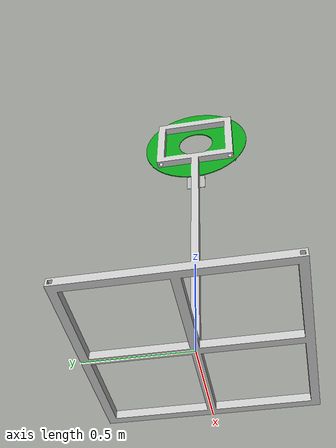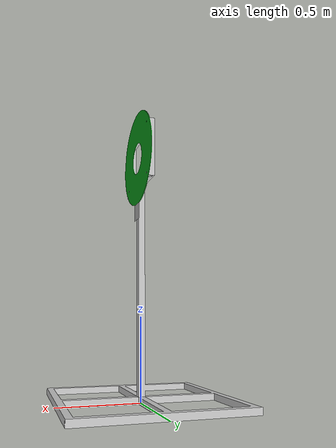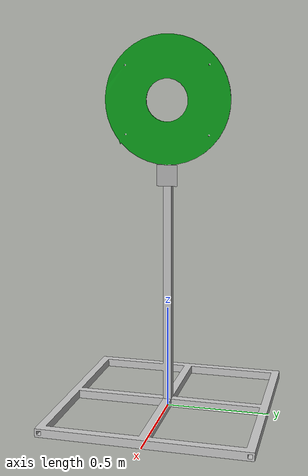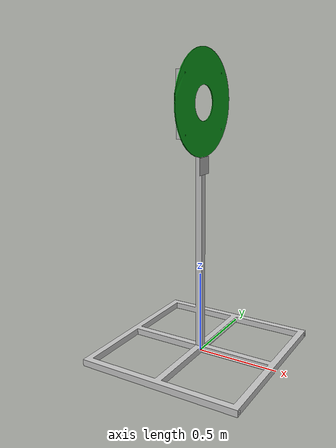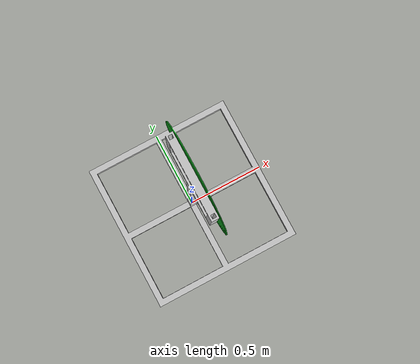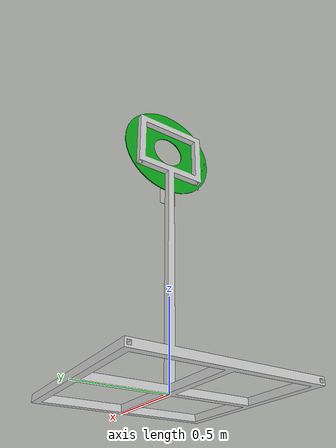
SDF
<?xml version="1.0" ?>
<sdf version="1.5">
  <model name='tc6_big_target_2'>

  <include>
    <uri>model://tc6_big_target</uri>
    <pose>0 0 0 0 0 0</pose>
  </include>

  <include>
    <uri>model://apriltag_2</uri>
    <pose>0.025 0 1.035 0 0 0</pose>
  </include>

  <joint name="tag_joint" type="fixed">
      <child>apriltag_2::link</child>
      <parent>tc6_big_target::tc6_big_target</parent>
  </joint>

  </model>
</sdf>

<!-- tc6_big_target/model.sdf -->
<sdf version="1.5">
  <model name='tc6_big_target'>
    <link name='tc6_big_target'>
      <pose>0 0 0 0 -0 0</pose>
      <inertial>
        <pose>0.002502 0 0.50099 0 -0 0</pose>
        <mass>11.287</mass>
        <inertia>
          <ixx>5.72909</ixx>
          <ixy>-1.72778e-18</ixy>
          <ixz>0.0282177</ixz>
          <iyy>5.65454</iyy>
          <iyz>-2.45135e-16</iyz>
          <izz>1.65105</izz>
        </inertia>
      </inertial>
      <collision name='tc6_big_target_collision'>
        <pose>0 0 0 1.5708 -0 0</pose>
        <geometry>
          <mesh>
            <scale>1 1 1</scale>
            <uri>model://tc6_big_target/meshes/tc6_big_target.dae</uri>
          </mesh>
        </geometry>
      </collision>
      <visual name='tc6_big_target_visual'>
        <pose>0 0 0 1.5708 -0 0</pose>
        <geometry>
          <mesh>
            <scale>1 1 1</scale>
            <uri>model://tc6_big_target/meshes/tc6_big_target.dae</uri>
          </mesh>
        </geometry>
      </visual>
    </link>
  </model>
</sdf>

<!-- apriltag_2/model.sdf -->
<sdf version="1.5">
  <model name="apriltag_2">
    <link name="link">
      <pose>0 0 0.115 0 0 0</pose>
      <inertial>
        <mass>0.390</mass>
        <inertia>
          <ixx>0.00058</ixx>
          <ixy>0</ixy>
          <ixz>0</ixz>
          <iyy>0.00058</iyy>
          <iyz>0</iyz>
          <izz>0.00019</izz>
        </inertia>
      </inertial>
      <collision name="collision">
        <geometry>
          <box>
            <size>0.001 0.1 0.1</size>
          </box>
        </geometry>
      </collision>
      <visual name="visual">
        <geometry>
          <box>
            <size>0.001 0.1 0.1</size>
          </box>
        </geometry>
        <material>
          <script>
            <uri>model://apriltag_2/materials/scripts</uri>
            <uri>model://apriltag_2/materials/textures</uri>
            <name>apriltag_2/Diffuse</name>
          </script>
        </material>
      </visual>
    </link>
  </model>
</sdf>
